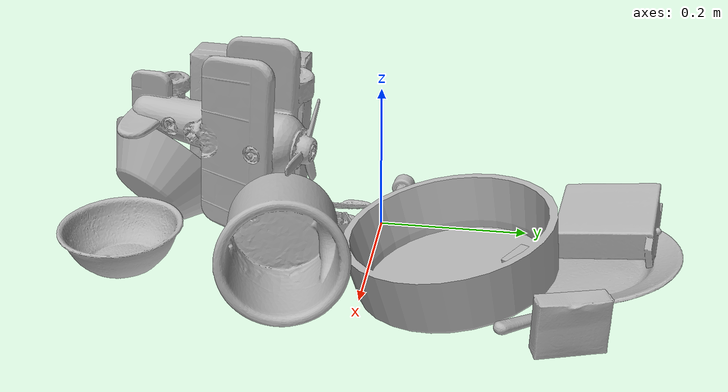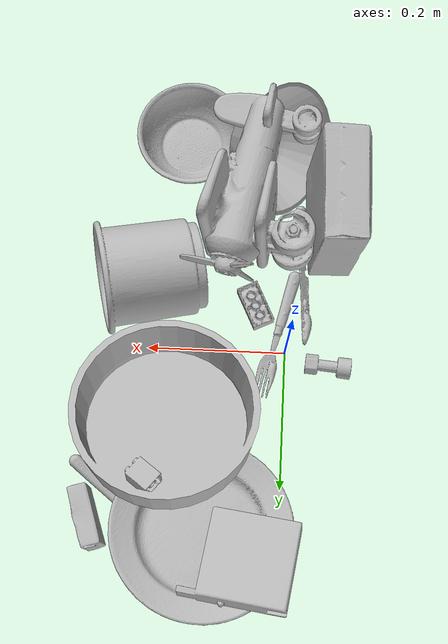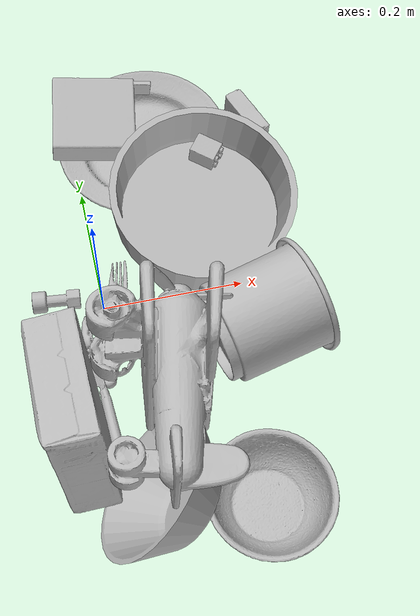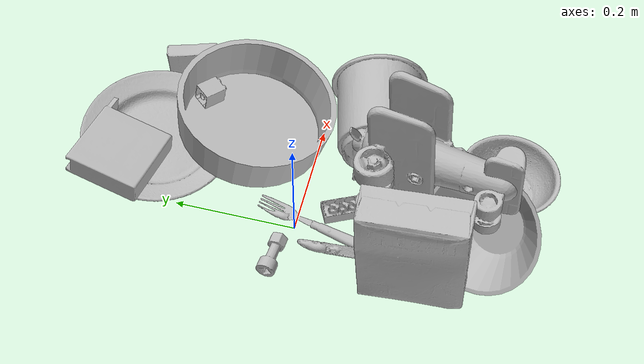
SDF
<sdf version="1.4">
  <world name="default">
    <light name="light1" type="point">
      <pose>0 0 1 0 0 0</pose>
      <diffuse>3 3 3 1</diffuse>
      <specular>3 3 3 1</specular>
    </light>
    <light name="light2" type="point">
      <pose>0 0.5 2 0 0 0</pose>
      <diffuse>1 1 1 1</diffuse>
      <specular>1 1 1 1</specular>
    </light>
    <light name="light3" type="point">
      <pose>0 0.5 2 0 0 0</pose>
      <diffuse>3 3 3 1</diffuse>
      <specular>3 3 3 1</specular>
    </light>
    <scene>
      <ambient>0.7 0.7 0.7</ambient>
    </scene>
    <model name="plate1">
      <link name="link_plate1">
        <collision name="default">
          <geometry>
            <mesh>
              <uri>model://plate/collision_meshes/collision.obj</uri>
              <scale>1.0 1.0 1.0</scale>
            </mesh>
          </geometry>
          <surface>
            <friction>
              <ode>
                <mu>0.5</mu>
                <mu2>0.5</mu2>
              </ode>
            </friction>
          <contact>
        <ode>
            <max_vel>0</max_vel>
            <min_depth>0.0001</min_depth>
            <kp>1e8</kp>
        </ode>
    </contact></surface>
        </collision>
        <visual name="default">
          <geometry>
            <mesh>
              <uri>model://plate/visual_meshes/visual.dae</uri>
              <scale>1.0 1.0 1.0</scale>
            </mesh>
          </geometry>
        </visual>
        <inertial>
          <mass>0.1516857147216797</mass>
          <pose>-0.0006044649053364992 0.00027825761935673654 -0.0010561972158029675 0.002218765199568956 -0.003225488596237322 0.4526153800388047</pose>
          <inertia>
            <ixx>0.00070958876</ixx>
            <iyy>0.0007028018</iyy>
            <izz>0.00138785</izz>
            <ixy>0</ixy>
            <ixz>0</ixz>
            <iyz>0</iyz>
          </inertia>
        </inertial>
      </link>
      <pose>0.10838623344898224 0.26501911878585815 0.023057883605360985 -0.0940606018732444 -0.08339052656183443 1.7334538206352614</pose>
    </model>
    <model name="plate2">
      <link name="link_plate2">
        <collision name="default">
          <geometry>
            <mesh>
              <uri>model://pan_tefal/collision_meshes/collision.obj</uri>
              <scale>1.0 1.0 1.0</scale>
            </mesh>
          </geometry>
          <surface>
            <friction>
              <ode>
                <mu>0.5</mu>
                <mu2>0.5</mu2>
              </ode>
            </friction>
          <contact>
        <ode>
            <max_vel>0</max_vel>
            <min_depth>0.0001</min_depth>
            <kp>1e8</kp>
        </ode>
    </contact></surface>
        </collision>
        <visual name="default">
          <geometry>
            <mesh>
              <uri>model://pan_tefal/visual_meshes/visual.dae</uri>
              <scale>1.0 1.0 1.0</scale>
            </mesh>
          </geometry>
        </visual>
        <inertial>
          <mass>1.0862284898757935</mass>
          <pose>-0.00018001910939347 3.2794348953757435e-05 -0.00851493515074253 0.0008190334899032376 -0.0003301482999058744 -0.3318501395419688</pose>
          <inertia>
            <ixx>0.0074981838</ixx>
            <iyy>0.007546525</iyy>
            <izz>0.013802713</izz>
            <ixy>0</ixy>
            <ixz>0</ixz>
            <iyz>0</iyz>
          </inertia>
        </inertial>
      </link>
      <pose>0.16590310633182526 0.11175587773323059 0.060272205621004105 0.0866910158278766 0.17404142080094429 -1.020454143722266</pose>
    </model>
    <model name="bowl1">
      <link name="link_bowl1">
        <collision name="default">
          <geometry>
            <mesh>
              <uri>model://bowl_a/collision_meshes/collision.obj</uri>
              <scale>1.0 1.0 1.0</scale>
            </mesh>
          </geometry>
          <surface>
            <friction>
              <ode>
                <mu>0.5</mu>
                <mu2>0.5</mu2>
              </ode>
            </friction>
          <contact>
        <ode>
            <max_vel>0</max_vel>
            <min_depth>0.0001</min_depth>
            <kp>1e8</kp>
        </ode>
    </contact></surface>
        </collision>
        <visual name="default">
          <geometry>
            <mesh>
              <uri>model://bowl_a/visual_meshes/visual.dae</uri>
              <scale>1.0 1.0 1.0</scale>
            </mesh>
          </geometry>
        </visual>
        <inertial>
          <mass>0.23323877155780792</mass>
          <pose>0.0002786752884276211 4.7312129026977345e-05 -0.001376529224216938 -0.000980538139416196 -0.00109382495954127 -0.19123674059098103</pose>
          <inertia>
            <ixx>0.0006640416</ixx>
            <iyy>0.0006681184</iyy>
            <izz>0.0011810234</izz>
            <ixy>0</ixy>
            <ixz>0</ixz>
            <iyz>0</iyz>
          </inertia>
        </inertial>
      </link>
      <pose>0.03415519371628761 -0.29908090829849243 0.06407343596220016 -0.6361159423805423 0.7783993016237856 1.786380242385471</pose>
    </model>
    <model name="bowl2">
      <link name="link_bowl2">
        <collision name="default">
          <geometry>
            <mesh>
              <uri>model://bowl/collision_meshes/collision.obj</uri>
              <scale>1.0 1.0 1.0</scale>
            </mesh>
          </geometry>
          <surface>
            <friction>
              <ode>
                <mu>0.5</mu>
                <mu2>0.5</mu2>
              </ode>
            </friction>
          <contact>
        <ode>
            <max_vel>0</max_vel>
            <min_depth>0.0001</min_depth>
            <kp>1e8</kp>
        </ode>
    </contact></surface>
        </collision>
        <visual name="default">
          <geometry>
            <mesh>
              <uri>model://bowl/visual_meshes/visual.dae</uri>
              <scale>1.0 1.0 1.0</scale>
            </mesh>
          </geometry>
        </visual>
        <inertial>
          <mass>0.08787161856889725</mass>
          <pose>0.00020445531117729843 -0.0010302038863301277 -0.0008042651461437345 -0.015764035308279474 0.014546860922519275 0.7140443952173783</pose>
          <inertia>
            <ixx>0.00020184812</ixx>
            <iyy>0.00019733804</iyy>
            <izz>0.00033957793</izz>
            <ixy>0</ixy>
            <ixz>0</ixz>
            <iyz>0</iyz>
          </inertia>
        </inertial>
      </link>
      <pose>0.15247924625873566 -0.3188173770904541 0.027780011296272278 -1.9224231125467462e-07 1.1579671566470591e-08 -2.9148315609372215</pose>
    </model>
    <model name="silverware1">
      <link name="link_silverware1">
        <collision name="default">
          <geometry>
            <mesh>
              <uri>model://spoon/collision_meshes/collision.obj</uri>
              <scale>1.0 1.0 1.0</scale>
            </mesh>
          </geometry>
          <surface>
            <friction>
              <ode>
                <mu>0.5</mu>
                <mu2>0.5</mu2>
              </ode>
            </friction>
          <contact>
        <ode>
            <max_vel>0</max_vel>
            <min_depth>0.0001</min_depth>
            <kp>1e8</kp>
        </ode>
    </contact></surface>
        </collision>
        <visual name="default">
          <geometry>
            <mesh>
              <uri>model://spoon/visual_meshes/visual.dae</uri>
              <scale>1.0 1.0 1.0</scale>
            </mesh>
          </geometry>
        </visual>
        <inertial>
          <mass>0.028818774968385696</mass>
          <pose>-0.0055263228714466095 -0.0016034181462600827 -0.0007271657814271748 0.03521556092832266 -0.039065843026344464 0.006150610888934851</pose>
          <inertia>
            <ixx>1.6029475e-06</ixx>
            <iyy>0.0001096545</iyy>
            <izz>0.000110445</izz>
            <ixy>0</ixy>
            <ixz>0</ixz>
            <iyz>0</iyz>
          </inertia>
        </inertial>
      </link>
      <pose>0.22096949815750122 0.23223939538002014 0.019710751250386238 0.025636658066970137 0.22485872243898855 2.4396089830856456</pose>
    </model>
    <model name="box1">
      <link name="link_box1">
        <collision name="default">
          <geometry>
            <mesh>
              <uri>model://cracker_box/collision_meshes/collision.obj</uri>
              <scale>1.0 1.0 1.0</scale>
            </mesh>
          </geometry>
          <surface>
            <friction>
              <ode>
                <mu>0.5</mu>
                <mu2>0.5</mu2>
              </ode>
            </friction>
          <contact>
        <ode>
            <max_vel>0</max_vel>
            <min_depth>0.0001</min_depth>
            <kp>1e8</kp>
        </ode>
    </contact></surface>
        </collision>
        <visual name="default">
          <geometry>
            <mesh>
              <uri>model://cracker_box/visual_meshes/visual.dae</uri>
              <scale>1.0 1.0 1.0</scale>
            </mesh>
          </geometry>
        </visual>
        <inertial>
          <mass>2.9781224727630615</mass>
          <pose>0.0009464174509048462 0.00025434247800149024 -0.0017029534792527556 -0.0003162077703261406 -0.01110649239447325 0.0025467938390949236</pose>
          <inertia>
            <ixx>0.007575013</ixx>
            <iyy>0.012507835</iyy>
            <izz>0.017849829</izz>
            <ixy>0</ixy>
            <ixz>0</ixz>
            <iyz>0</iyz>
          </inertia>
        </inertial>
      </link>
      <pose>-0.06325601041316986 -0.19637227058410645 0.11162630468606949 2.2169324955338534 1.497810277950949 -0.8851779472147953</pose>
    </model>
    <model name="box2">
      <link name="link_box2">
        <collision name="default">
          <geometry>
            <mesh>
              <uri>model://gelatin_box/collision_meshes/collision.obj</uri>
              <scale>1.0 1.0 1.0</scale>
            </mesh>
          </geometry>
          <surface>
            <friction>
              <ode>
                <mu>0.5</mu>
                <mu2>0.5</mu2>
              </ode>
            </friction>
          <contact>
        <ode>
            <max_vel>0</max_vel>
            <min_depth>0.0001</min_depth>
            <kp>1e8</kp>
        </ode>
    </contact></surface>
        </collision>
        <visual name="default">
          <geometry>
            <mesh>
              <uri>model://gelatin_box/visual_meshes/visual.dae</uri>
              <scale>1.0 1.0 1.0</scale>
            </mesh>
          </geometry>
        </visual>
        <inertial>
          <mass>0.16266882419586182</mass>
          <pose>0.0004319618456065655 0.00011156871914863586 -0.0003640321083366871 -0.0010503720968416132 -0.004755819155016646 0.016440559472150423</pose>
          <inertia>
            <ixx>0.00011483092</ixx>
            <iyy>8.202313e-05</iyy>
            <izz>0.00017479825</izz>
            <ixy>0</ixy>
            <ixz>0</ixz>
            <iyz>0</iyz>
          </inertia>
        </inertial>
      </link>
      <pose>0.2700514495372772 0.25491681694984436 0.036448556929826736 2.2963198877571345 -1.5392905898289682 1.1581131618728087</pose>
    </model>
    <model name="cup1">
      <link name="link_cup1">
        <collision name="default">
          <geometry>
            <mesh>
              <uri>model://f_cups/collision_meshes/collision.obj</uri>
              <scale>2.0 2.0 2.0</scale>
            </mesh>
          </geometry>
          <surface>
            <friction>
              <ode>
                <mu>0.5</mu>
                <mu2>0.5</mu2>
              </ode>
            </friction>
          <contact>
        <ode>
            <max_vel>0</max_vel>
            <min_depth>0.0001</min_depth>
            <kp>1e8</kp>
        </ode>
    </contact></surface>
        </collision>
        <visual name="default">
          <geometry>
            <mesh>
              <uri>model://f_cups/visual_meshes/visual.dae</uri>
              <scale>2.0 2.0 2.0</scale>
            </mesh>
          </geometry>
        </visual>
        <inertial>
          <mass>0.6683602333068848</mass>
          <pose>-0.006342936307191849 -0.0012480152072384953 -0.0073110745288431644 0.7862253042657107 -0.260793604503958 -0.18237387444081576</pose>
          <inertia>
            <ixx>0.0025131067</ixx>
            <iyy>0.0026362767</iyy>
            <izz>0.0027444381</izz>
            <ixy>0</ixy>
            <ixz>0</ixz>
            <iyz>0</iyz>
          </inertia>
        </inertial>
      </link>
      <pose>0.19835755228996277 -0.09460710734128952 0.07501684874296188 -1.471474629569425 0.0715507762291648 -1.3430877618787551</pose>
    </model>
    <model name="silverware2">
      <link name="link_silverware2">
        <collision name="default">
          <geometry>
            <mesh>
              <uri>model://knife/collision_meshes/collision.obj</uri>
              <scale>1.0 1.0 1.0</scale>
            </mesh>
          </geometry>
          <surface>
            <friction>
              <ode>
                <mu>0.5</mu>
                <mu2>0.5</mu2>
              </ode>
            </friction>
          <contact>
        <ode>
            <max_vel>0</max_vel>
            <min_depth>0.0001</min_depth>
            <kp>1e8</kp>
        </ode>
    </contact></surface>
        </collision>
        <visual name="default">
          <geometry>
            <mesh>
              <uri>model://knife/visual_meshes/visual.dae</uri>
              <scale>1.0 1.0 1.0</scale>
            </mesh>
          </geometry>
        </visual>
        <inertial>
          <mass>0.03087119571864605</mass>
          <pose>-0.023785250261425972 0.0015275123296305537 5.062009586254135e-05 0.07305987484925712 0.017248420899959087 -0.007409824084002247</pose>
          <inertia>
            <ixx>8.762499e-07</ixx>
            <iyy>0.000118602155</iyy>
            <izz>0.00011888435</izz>
            <ixy>0</ixy>
            <ixz>0</ixz>
            <iyz>0</iyz>
          </inertia>
        </inertial>
      </link>
      <pose>-0.02399315871298313 -0.11991292238235474 0.008423315361142159 2.2886941495238253 0.00035033423392174715 1.6336138493579275</pose>
    </model>
    <model name="silverware3">
      <link name="link_silverware3">
        <collision name="default">
          <geometry>
            <mesh>
              <uri>model://fork/collision_meshes/collision.obj</uri>
              <scale>1.0 1.0 1.0</scale>
            </mesh>
          </geometry>
          <surface>
            <friction>
              <ode>
                <mu>0.5</mu>
                <mu2>0.5</mu2>
              </ode>
            </friction>
          <contact>
        <ode>
            <max_vel>0</max_vel>
            <min_depth>0.0001</min_depth>
            <kp>1e8</kp>
        </ode>
    </contact></surface>
        </collision>
        <visual name="default">
          <geometry>
            <mesh>
              <uri>model://fork/visual_meshes/visual.dae</uri>
              <scale>1.0 1.0 1.0</scale>
            </mesh>
          </geometry>
        </visual>
        <inertial>
          <mass>0.015284496359527111</mass>
          <pose>-0.02957003004848957 0.00046588233090005815 0.00032188600744120777 -0.013550803329795006 -0.010977829430356707 0.014453895799763906</pose>
          <inertia>
            <ixx>5.358081e-07</ixx>
            <iyy>3.9903432e-05</iyy>
            <izz>4.0143095e-05</izz>
            <ixy>0</ixy>
            <ixz>0</ixz>
            <iyz>0</iyz>
          </inertia>
        </inertial>
      </link>
      <pose>0.011493497528135777 -0.028610194101929665 0.005769297480583191 -0.19213166273059457 0.023832058638548956 1.3169407245350668</pose>
    </model>
    <model name="toy1">
      <link name="link_toy1">
        <collision name="default">
          <geometry>
            <mesh>
              <uri>model://c_toy_airplane/collision_meshes/collision.obj</uri>
              <scale>1.0 1.0 1.0</scale>
            </mesh>
          </geometry>
          <surface>
            <friction>
              <ode>
                <mu>0.5</mu>
                <mu2>0.5</mu2>
              </ode>
            </friction>
          <contact>
        <ode>
            <max_vel>0</max_vel>
            <min_depth>0.0001</min_depth>
            <kp>1e8</kp>
        </ode>
    </contact></surface>
        </collision>
        <visual name="default">
          <geometry>
            <mesh>
              <uri>model://c_toy_airplane/visual_meshes/visual.dae</uri>
              <scale>1.0 1.0 1.0</scale>
            </mesh>
          </geometry>
        </visual>
        <inertial>
          <mass>0.014899278059601784</mass>
          <pose>-0.0002302424400113523 -4.428088118402229e-07 -0.006080529186874628 -0.00619304524108313 -0.016797611161866028 0.7655100812139064</pose>
          <inertia>
            <ixx>6.841441e-06</ixx>
            <iyy>6.822133e-06</iyy>
            <izz>1.6062353e-06</izz>
            <ixy>0</ixy>
            <ixz>0</ixz>
            <iyz>0</iyz>
          </inertia>
        </inertial>
      </link>
      <pose>-0.06285928934812546 0.018813133239746094 0.014692844823002815 1.5894950248293778 -0.09926708410320405 1.4914430702491384</pose>
    </model>
    <model name="toy2">
      <link name="link_toy2">
        <collision name="default">
          <geometry>
            <mesh>
              <uri>model://nine_hole_peg_test/collision_meshes/collision.obj</uri>
              <scale>1.0 1.0 1.0</scale>
            </mesh>
          </geometry>
          <surface>
            <friction>
              <ode>
                <mu>0.5</mu>
                <mu2>0.5</mu2>
              </ode>
            </friction>
          <contact>
        <ode>
            <max_vel>0</max_vel>
            <min_depth>0.0001</min_depth>
            <kp>1e8</kp>
        </ode>
    </contact></surface>
        </collision>
        <visual name="default">
          <geometry>
            <mesh>
              <uri>model://nine_hole_peg_test/visual_meshes/visual.dae</uri>
              <scale>1.0 1.0 1.0</scale>
            </mesh>
          </geometry>
        </visual>
        <inertial>
          <mass>0.8674170970916748</mass>
          <pose>-0.004617386031895876 -0.009647614322602749 2.6460689696250483e-05 -0.0014666783129250742 0.0007194188660534222 -0.6342410037611789</pose>
          <inertia>
            <ixx>0.0013563493</ixx>
            <iyy>0.0012664091</iyy>
            <izz>0.0023767245</izz>
            <ixy>0</ixy>
            <ixz>0</ixz>
            <iyz>0</iyz>
          </inertia>
        </inertial>
      </link>
      <pose>0.051415327936410904 0.3089156448841095 0.05108548328280449 -3.0537981494458375 -0.16172750734342345 1.4074918155805465</pose>
    </model>
    <model name="toy3">
      <link name="link_toy3">
        <collision name="default">
          <geometry>
            <mesh>
              <uri>model://a_toy_airplane/collision_meshes/collision.obj</uri>
              <scale>1.0 1.0 1.0</scale>
            </mesh>
          </geometry>
          <surface>
            <friction>
              <ode>
                <mu>0.5</mu>
                <mu2>0.5</mu2>
              </ode>
            </friction>
          <contact>
        <ode>
            <max_vel>0</max_vel>
            <min_depth>0.0001</min_depth>
            <kp>1e8</kp>
        </ode>
    </contact></surface>
        </collision>
        <visual name="default">
          <geometry>
            <mesh>
              <uri>model://a_toy_airplane/visual_meshes/visual.dae</uri>
              <scale>1.0 1.0 1.0</scale>
            </mesh>
          </geometry>
        </visual>
        <inertial>
          <mass>1.0043106079101562</mass>
          <pose>0.02516508847475052 -0.003707321360707283 -0.0011962434509769082 -0.01201694293172648 -0.14663499629613377 0.0041490900747424425</pose>
          <inertia>
            <ixx>0.0036471337</ixx>
            <iyy>0.0053146123</iyy>
            <izz>0.0062227584</izz>
            <ixy>0</ixy>
            <ixz>0</ixz>
            <iyz>0</iyz>
          </inertia>
        </inertial>
      </link>
      <pose>0.061493437737226486 -0.20316970348358154 0.16267019510269165 1.6134594182813515 0.0892221121753316 1.5518582771552203</pose>
    </model>
    <model name="toy4">
      <link name="link_toy4">
        <collision name="default">
          <geometry>
            <mesh>
              <uri>model://c_lego_duplo/collision_meshes/collision.obj</uri>
              <scale>1.0 1.0 1.0</scale>
            </mesh>
          </geometry>
          <surface>
            <friction>
              <ode>
                <mu>0.5</mu>
                <mu2>0.5</mu2>
              </ode>
            </friction>
          <contact>
        <ode>
            <max_vel>0</max_vel>
            <min_depth>0.0001</min_depth>
            <kp>1e8</kp>
        </ode>
    </contact></surface>
        </collision>
        <visual name="default">
          <geometry>
            <mesh>
              <uri>model://c_lego_duplo/visual_meshes/visual.dae</uri>
              <scale>1.0 1.0 1.0</scale>
            </mesh>
          </geometry>
        </visual>
        <inertial>
          <mass>0.019874408841133118</mass>
          <pose>0.0003164595691487193 0.0001946465636137873 0.0010453156428411603 -0.01152079101413275 0.005900072799474436 0.031100350485514378</pose>
          <inertia>
            <ixx>7.648045e-06</ixx>
            <iyy>2.443061e-06</iyy>
            <izz>8.937529e-06</izz>
            <ixy>0</ixy>
            <ixz>0</ixz>
            <iyz>0</iyz>
          </inertia>
        </inertial>
      </link>
      <pose>0.04580986872315407 -0.06779661774635315 0.011916697956621647 -3.1350878591112674 -0.0003468658337006114 0.4779910046549086</pose>
    </model>
    <model name="toy5">
      <link name="link_toy5">
        <collision name="default">
          <geometry>
            <mesh>
              <uri>model://b_lego_duplo/collision_meshes/collision.obj</uri>
              <scale>1.0 1.0 1.0</scale>
            </mesh>
          </geometry>
          <surface>
            <friction>
              <ode>
                <mu>0.5</mu>
                <mu2>0.5</mu2>
              </ode>
            </friction>
          <contact>
        <ode>
            <max_vel>0</max_vel>
            <min_depth>0.0001</min_depth>
            <kp>1e8</kp>
        </ode>
    </contact></surface>
        </collision>
        <visual name="default">
          <geometry>
            <mesh>
              <uri>model://b_lego_duplo/visual_meshes/visual.dae</uri>
              <scale>1.0 1.0 1.0</scale>
            </mesh>
          </geometry>
        </visual>
        <inertial>
          <mass>0.031542204320430756</mass>
          <pose>-0.0001105302435462363 -9.152341590379365e-06 0.001929428894072771 -0.03749493031375769 -0.026354084635952003 0.4518990108557965</pose>
          <inertia>
            <ixx>6.4553496e-06</ixx>
            <iyy>6.4987444e-06</iyy>
            <izz>5.7515063e-06</izz>
            <ixy>0</ixy>
            <ixz>0</ixz>
            <iyz>0</iyz>
          </inertia>
        </inertial>
      </link>
      <pose>0.19305461645126343 0.19632220268249512 0.06174121052026749 2.3395468773995836 1.3699976256839823 1.6801760616870314</pose>
    </model>
  <physics type="ode">
      <max_contacts>50</max_contacts>
      <ode>
        <solver>
          <type>quick</type>
          <iters>75</iters>
        </solver>
        <constraints>
          <contact_max_correcting_vel>0</contact_max_correcting_vel>
          <contact_surface_layer>0</contact_surface_layer>
        </constraints>
      </ode>
    </physics></world>
</sdf>
